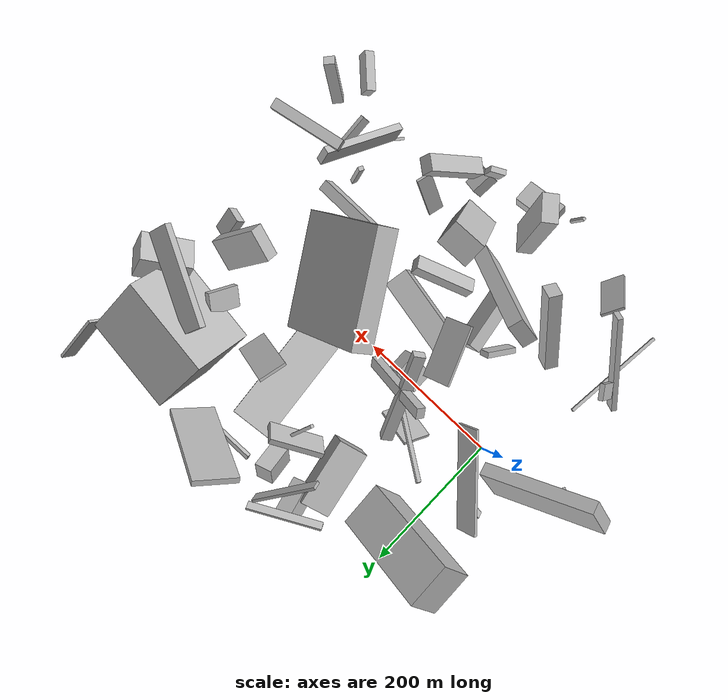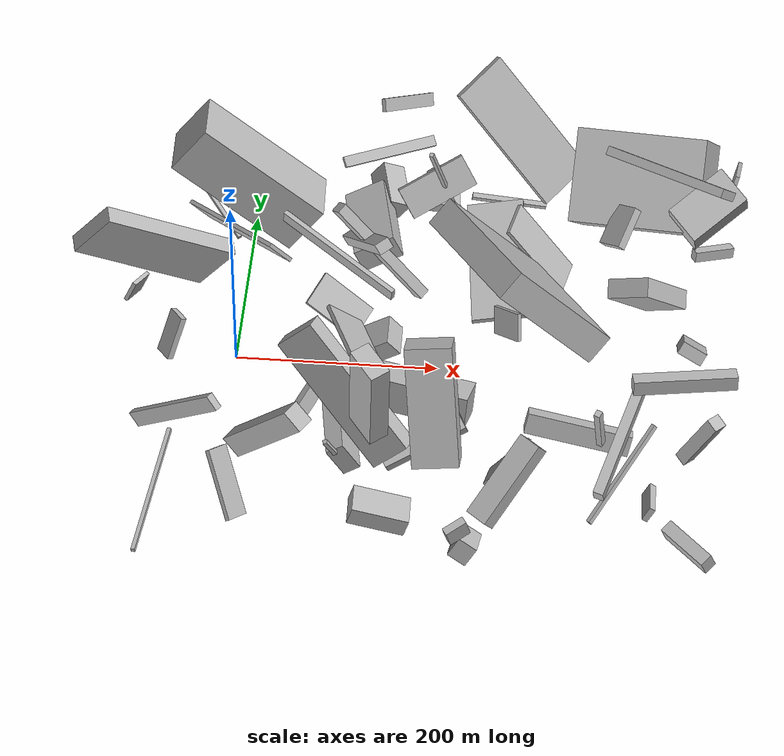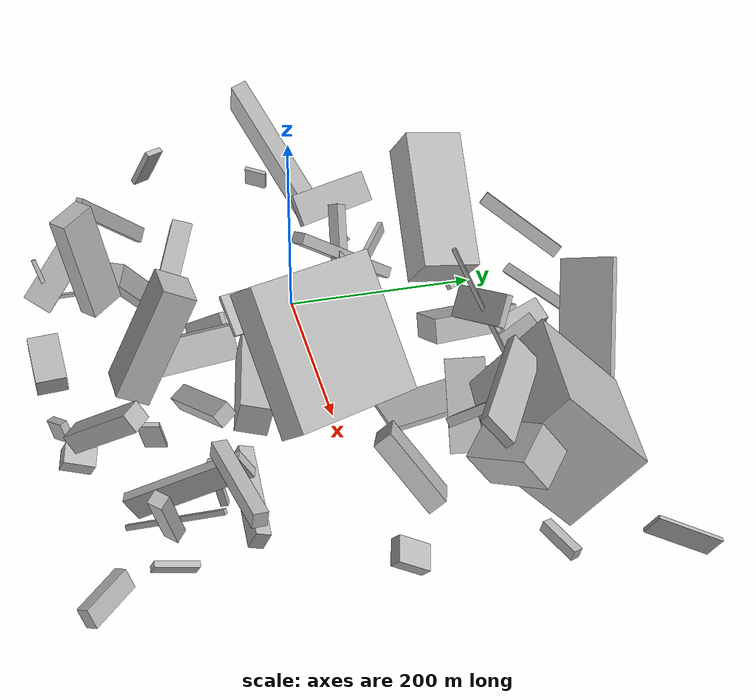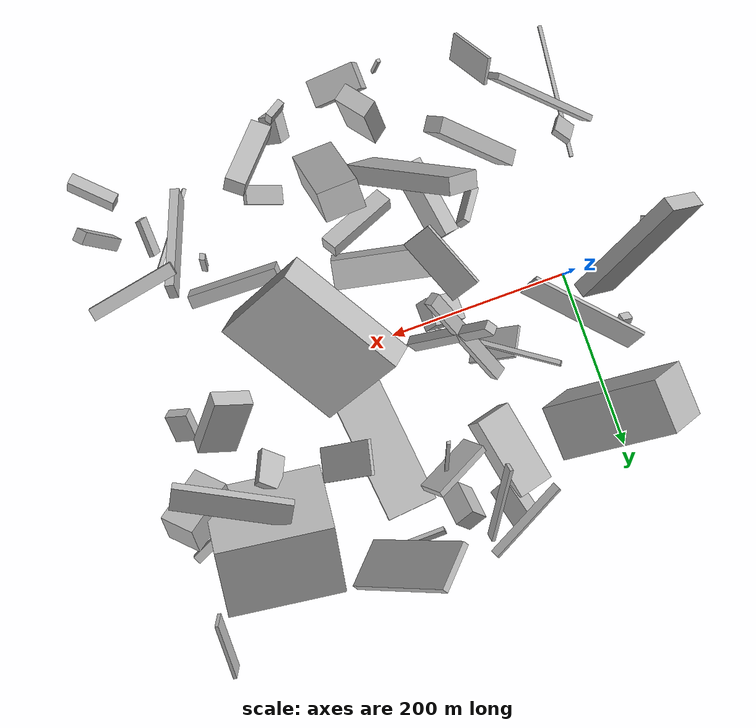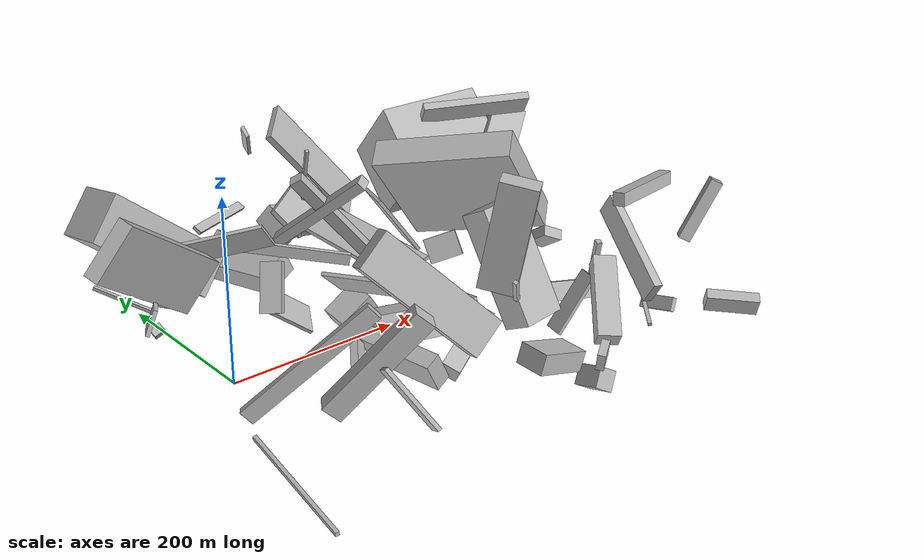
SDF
<sdf version="1.6">
 <world name="default">
  <scene>
   <sky><clouds><speed>12</speed></clouds></sky>
   <ambient>0.4 0.4 0.4 1</ambient>
   <background>0.7 0.7 0.7 1</background>
   <shadows>1</shadows>
  </scene>
  <gravity>0 0 -9.8066</gravity>
  <magnetic_field>6e-06 2.3e-05 -4.2e-05</magnetic_field>
  <physics default="0" name="default_physics" type="ode">
   <ode>
    <solver>
     <type>quick</type>
     <iters>10</iters>
     <sor>1.0</sor>
     <use_dynamic_moi_rescaling>0</use_dynamic_moi_rescaling>
    </solver>
    <constraints>
     <cfm>0</cfm>
     <erp>0.2</erp>
     <contact_max_correcting_vel>100</contact_max_correcting_vel>
     <contact_surface_layer>0.001</contact_surface_layer>
    </constraints>
   </ode>
   <max_step_size>0.004</max_step_size>
   <real_time_factor>1</real_time_factor>
   <real_time_update_rate>250</real_time_update_rate>
  </physics>
  <light name="sun" type="directional">
   <pose>0 0 10 0 0 0</pose>
   <diffuse>0.8 0.8 0.8 1</diffuse>
   <specular>0.2 0.2 0.2 1</specular>
   <attenuation>
    <range>1000</range>
    <constant>0.9</constant>
    <linear>0.01</linear>
    <quadratic>0.001</quadratic>
   </attenuation>
   <direction>-0.5 0.1 -0.9</direction>
  </light>
  <model name="building_1">
   <static>0</static>
   <pose>123.74335335547285 -56.24664806190561 90.116198682808 0.14238553877001117 -0.7318993161235338 -2.857929717678552</pose>
   <link name="link">
    <gravity>0</gravity>
    <pose>0 0 2.0 0 0 0</pose>
    <collision name="collision"><geometry><box><size>43 81 4</size></box></geometry></collision>
    <visual name="visual">
     <cast_shadows>0</cast_shadows>
     <geometry><box><size>43 81 4</size></box></geometry>
     <material>
      <script>
       <uri>model://HANNAS_wall/materials/scripts</uri>
       <uri>model://HANNAS_wall/materials/textures</uri>
       <name>vrc/HANNAS_wall</name>
      </script>
     </material>
    </visual>
   </link>
  </model>
  <model name="building_2">
   <static>0</static>
   <pose>259.74982524314913 36.923315966485525 37.78510158858887 -1.4605844071993501 -0.1436564406270151 0.08734681460795106</pose>
   <link name="link">
    <gravity>0</gravity>
    <pose>0 0 75.0 0 0 0</pose>
    <collision name="collision"><geometry><box><size>57 5 150</size></box></geometry></collision>
    <visual name="visual">
     <cast_shadows>0</cast_shadows>
     <geometry><box><size>57 5 150</size></box></geometry>
     <material>
      <script>
       <uri>model://HANNAS_wall/materials/scripts</uri>
       <uri>model://HANNAS_wall/materials/textures</uri>
       <name>vrc/HANNAS_wall</name>
      </script>
     </material>
    </visual>
   </link>
  </model>
  <model name="building_3">
   <static>0</static>
   <pose>145.3525344953552 221.3766727356625 28.350001901200404 0.45486317061126996 -0.9570368602028965 -0.13378304750340705</pose>
   <link name="link">
    <gravity>0</gravity>
    <pose>0 0 12.5 0 0 0</pose>
    <collision name="collision"><geometry><box><size>24 48 25</size></box></geometry></collision>
    <visual name="visual">
     <cast_shadows>0</cast_shadows>
     <geometry><box><size>24 48 25</size></box></geometry>
     <material>
      <script>
       <uri>model://HANNAS_wall/materials/scripts</uri>
       <uri>model://HANNAS_wall/materials/textures</uri>
       <name>vrc/HANNAS_wall</name>
      </script>
     </material>
    </visual>
   </link>
  </model>
  <model name="building_4">
   <static>0</static>
   <pose>240.7470517730752 -269.6540010209525 54.19824974842009 0.1086940778530044 -0.30485789043415945 0.5550606528805041</pose>
   <link name="link">
    <gravity>0</gravity>
    <pose>0 0 10.0 0 0 0</pose>
    <collision name="collision"><geometry><box><size>22 8 20</size></box></geometry></collision>
    <visual name="visual">
     <cast_shadows>0</cast_shadows>
     <geometry><box><size>22 8 20</size></box></geometry>
     <material>
      <script>
       <uri>model://HANNAS_wall/materials/scripts</uri>
       <uri>model://HANNAS_wall/materials/textures</uri>
       <name>vrc/HANNAS_wall</name>
      </script>
     </material>
    </visual>
   </link>
  </model>
  <model name="building_5">
   <static>0</static>
   <pose>108.29719682200997 -127.93823091513902 38.27034203593833 0.016714758355375517 1.073087494202924 0.16890316734252764</pose>
   <link name="link">
    <gravity>0</gravity>
    <pose>0 0 9.0 0 0 0</pose>
    <collision name="collision"><geometry><box><size>35 88 18</size></box></geometry></collision>
    <visual name="visual">
     <cast_shadows>0</cast_shadows>
     <geometry><box><size>35 88 18</size></box></geometry>
     <material>
      <script>
       <uri>model://HANNAS_wall/materials/scripts</uri>
       <uri>model://HANNAS_wall/materials/textures</uri>
       <name>vrc/HANNAS_wall</name>
      </script>
     </material>
    </visual>
   </link>
  </model>
  <model name="building_6">
   <static>0</static>
   <pose>433.646347328719 86.76203756718176 125.39207448574899 -1.114121876942822 0.4163938122923364 -0.7530156954402834</pose>
   <link name="link">
    <gravity>0</gravity>
    <pose>0 0 33.0 0 0 0</pose>
    <collision name="collision"><geometry><box><size>40 41 66</size></box></geometry></collision>
    <visual name="visual">
     <cast_shadows>0</cast_shadows>
     <geometry><box><size>40 41 66</size></box></geometry>
     <material>
      <script>
       <uri>model://HANNAS_wall/materials/scripts</uri>
       <uri>model://HANNAS_wall/materials/textures</uri>
       <name>vrc/HANNAS_wall</name>
      </script>
     </material>
    </visual>
   </link>
  </model>
  <model name="building_7">
   <static>0</static>
   <pose>401.2884645110185 199.86696154263456 77.24047619805447 0.7885647848949856 -0.05769050553876169 -0.1338964582395896</pose>
   <link name="link">
    <gravity>0</gravity>
    <pose>0 0 52.0 0 0 0</pose>
    <collision name="collision"><geometry><box><size>129 93 104</size></box></geometry></collision>
    <visual name="visual">
     <cast_shadows>0</cast_shadows>
     <geometry><box><size>129 93 104</size></box></geometry>
     <material>
      <script>
       <uri>model://HANNAS_wall/materials/scripts</uri>
       <uri>model://HANNAS_wall/materials/textures</uri>
       <name>vrc/HANNAS_wall</name>
      </script>
     </material>
    </visual>
   </link>
  </model>
  <model name="building_8">
   <static>0</static>
   <pose>152.13958935823766 -216.736445772496 140.5125747693636 0.18093582491385723 -0.08886203809144601 0.6492674722027028</pose>
   <link name="link">
    <gravity>0</gravity>
    <pose>0 0 54.5 0 0 0</pose>
    <collision name="collision"><geometry><box><size>20 36 109</size></box></geometry></collision>
    <visual name="visual">
     <cast_shadows>0</cast_shadows>
     <geometry><box><size>20 36 109</size></box></geometry>
     <material>
      <script>
       <uri>model://HANNAS_wall/materials/scripts</uri>
       <uri>model://HANNAS_wall/materials/textures</uri>
       <name>vrc/HANNAS_wall</name>
      </script>
     </material>
    </visual>
   </link>
  </model>
  <model name="building_9">
   <static>0</static>
   <pose>295.18817540945764 110.9042787282642 65.91169954935232 2.203803994833127 0.07629647262974666 -1.7997693987598509</pose>
   <link name="link">
    <gravity>0</gravity>
    <pose>0 0 2.0 0 0 0</pose>
    <collision name="collision"><geometry><box><size>39 91 4</size></box></geometry></collision>
    <visual name="visual">
     <cast_shadows>0</cast_shadows>
     <geometry><box><size>39 91 4</size></box></geometry>
     <material>
      <script>
       <uri>model://HANNAS_wall/materials/scripts</uri>
       <uri>model://HANNAS_wall/materials/textures</uri>
       <name>vrc/HANNAS_wall</name>
      </script>
     </material>
    </visual>
   </link>
  </model>
  <model name="building_10">
   <static>0</static>
   <pose>157.35843964056352 140.80154864615713 88.64840481960499 1.1603843916662249 0.5712188607745062 1.799602132724441</pose>
   <link name="link">
    <gravity>0</gravity>
    <pose>0 0 36.0 0 0 0</pose>
    <collision name="collision"><geometry><box><size>8 33 72</size></box></geometry></collision>
    <visual name="visual">
     <cast_shadows>0</cast_shadows>
     <geometry><box><size>8 33 72</size></box></geometry>
     <material>
      <script>
       <uri>model://HANNAS_wall/materials/scripts</uri>
       <uri>model://HANNAS_wall/materials/textures</uri>
       <name>vrc/HANNAS_wall</name>
      </script>
     </material>
    </visual>
   </link>
  </model>
  <model name="building_11">
   <static>0</static>
   <pose>279.1392019628646 -190.26148123420083 75.90543023914806 2.1612406105803434 -0.018599337153481936 1.3241074644466968</pose>
   <link name="link">
    <gravity>0</gravity>
    <pose>0 0 2.0 0 0 0</pose>
    <collision name="collision"><geometry><box><size>21 67 4</size></box></geometry></collision>
    <visual name="visual">
     <cast_shadows>0</cast_shadows>
     <geometry><box><size>21 67 4</size></box></geometry>
     <material>
      <script>
       <uri>model://HANNAS_wall/materials/scripts</uri>
       <uri>model://HANNAS_wall/materials/textures</uri>
       <name>vrc/HANNAS_wall</name>
      </script>
     </material>
    </visual>
   </link>
  </model>
  <model name="building_12">
   <static>0</static>
   <pose>183.15474945602898 15.703649832797186 87.86144784265011 -0.5783144656389352 -0.40814676209469297 0.8796921890699773</pose>
   <link name="link">
    <gravity>0</gravity>
    <pose>0 0 64.0 0 0 0</pose>
    <collision name="collision"><geometry><box><size>11 14 128</size></box></geometry></collision>
    <visual name="visual">
     <cast_shadows>0</cast_shadows>
     <geometry><box><size>11 14 128</size></box></geometry>
     <material>
      <script>
       <uri>model://HANNAS_wall/materials/scripts</uri>
       <uri>model://HANNAS_wall/materials/textures</uri>
       <name>vrc/HANNAS_wall</name>
      </script>
     </material>
    </visual>
   </link>
  </model>
  <model name="building_13">
   <static>0</static>
   <pose>-3.3813754856317715 189.88217393219918 95.81592569551108 1.3272162565689518 -0.8690493334747457 0.24290197307623052</pose>
   <link name="link">
    <gravity>0</gravity>
    <pose>0 0 31.0 0 0 0</pose>
    <collision name="collision"><geometry><box><size>55 150 62</size></box></geometry></collision>
    <visual name="visual">
     <cast_shadows>0</cast_shadows>
     <geometry><box><size>55 150 62</size></box></geometry>
     <material>
      <script>
       <uri>model://HANNAS_wall/materials/scripts</uri>
       <uri>model://HANNAS_wall/materials/textures</uri>
       <name>vrc/HANNAS_wall</name>
      </script>
     </material>
    </visual>
   </link>
  </model>
  <model name="building_14">
   <static>0</static>
   <pose>184.14721627654515 -59.36955670693196 38.797220792031 0.194739484414668 -1.3419493762796757 1.176780599482635</pose>
   <link name="link">
    <gravity>0</gravity>
    <pose>0 0 16.5 0 0 0</pose>
    <collision name="collision"><geometry><box><size>34 117 33</size></box></geometry></collision>
    <visual name="visual">
     <cast_shadows>0</cast_shadows>
     <geometry><box><size>34 117 33</size></box></geometry>
     <material>
      <script>
       <uri>model://HANNAS_wall/materials/scripts</uri>
       <uri>model://HANNAS_wall/materials/textures</uri>
       <name>vrc/HANNAS_wall</name>
      </script>
     </material>
    </visual>
   </link>
  </model>
  <model name="building_15">
   <static>0</static>
   <pose>-46.12538650730954 -149.81410995242265 152.01122513342955 -0.1441105155370551 0.449585419395785 0.5581015411777643</pose>
   <link name="link">
    <gravity>0</gravity>
    <pose>0 0 22.0 0 0 0</pose>
    <collision name="collision"><geometry><box><size>6 20 44</size></box></geometry></collision>
    <visual name="visual">
     <cast_shadows>0</cast_shadows>
     <geometry><box><size>6 20 44</size></box></geometry>
     <material>
      <script>
       <uri>model://HANNAS_wall/materials/scripts</uri>
       <uri>model://HANNAS_wall/materials/textures</uri>
       <name>vrc/HANNAS_wall</name>
      </script>
     </material>
    </visual>
   </link>
  </model>
  <model name="building_16">
   <static>0</static>
   <pose>248.31285917122273 218.61580723207652 97.26131772216327 1.1339551293798578 0.5509427623515697 2.129308347417714</pose>
   <link name="link">
    <gravity>0</gravity>
    <pose>0 0 29.0 0 0 0</pose>
    <collision name="collision"><geometry><box><size>8 150 58</size></box></geometry></collision>
    <visual name="visual">
     <cast_shadows>0</cast_shadows>
     <geometry><box><size>8 150 58</size></box></geometry>
     <material>
      <script>
       <uri>model://HANNAS_wall/materials/scripts</uri>
       <uri>model://HANNAS_wall/materials/textures</uri>
       <name>vrc/HANNAS_wall</name>
      </script>
     </material>
    </visual>
   </link>
  </model>
  <model name="building_17">
   <static>0</static>
   <pose>294.20296240356015 -109.07215516166126 48.27249375117434 1.7947117049915726 0.35463852028765 1.6149030752461226</pose>
   <link name="link">
    <gravity>0</gravity>
    <pose>0 0 51.5 0 0 0</pose>
    <collision name="collision"><geometry><box><size>15 21 103</size></box></geometry></collision>
    <visual name="visual">
     <cast_shadows>0</cast_shadows>
     <geometry><box><size>15 21 103</size></box></geometry>
     <material>
      <script>
       <uri>model://HANNAS_wall/materials/scripts</uri>
       <uri>model://HANNAS_wall/materials/textures</uri>
       <name>vrc/HANNAS_wall</name>
      </script>
     </material>
    </visual>
   </link>
  </model>
  <model name="building_18">
   <static>0</static>
   <pose>-58.23078290655988 -193.36435548346998 10.086351373051736 -1.6950017466391976 -0.08424361042544706 1.4571693512966941</pose>
   <link name="link">
    <gravity>0</gravity>
    <pose>0 0 2.0 0 0 0</pose>
    <collision name="collision"><geometry><box><size>150 4 4</size></box></geometry></collision>
    <visual name="visual">
     <cast_shadows>0</cast_shadows>
     <geometry><box><size>150 4 4</size></box></geometry>
     <material>
      <script>
       <uri>model://HANNAS_wall/materials/scripts</uri>
       <uri>model://HANNAS_wall/materials/textures</uri>
       <name>vrc/HANNAS_wall</name>
      </script>
     </material>
    </visual>
   </link>
  </model>
  <model name="building_19">
   <static>0</static>
   <pose>19.440685774261375 -251.72328882533992 88.54072569732739 -0.7527135560697148 0.7829681942489041 -1.0865947405323144</pose>
   <link name="link">
    <gravity>0</gravity>
    <pose>0 0 2.0 0 0 0</pose>
    <collision name="collision"><geometry><box><size>68 31 4</size></box></geometry></collision>
    <visual name="visual">
     <cast_shadows>0</cast_shadows>
     <geometry><box><size>68 31 4</size></box></geometry>
     <material>
      <script>
       <uri>model://HANNAS_wall/materials/scripts</uri>
       <uri>model://HANNAS_wall/materials/textures</uri>
       <name>vrc/HANNAS_wall</name>
      </script>
     </material>
    </visual>
   </link>
  </model>
  <model name="building_20">
   <static>0</static>
   <pose>394.9912742620975 -146.03557597300872 142.89816554164557 1.7999579091405493 -1.4474266558569193 1.5236582524027045</pose>
   <link name="link">
    <gravity>0</gravity>
    <pose>0 0 49.5 0 0 0</pose>
    <collision name="collision"><geometry><box><size>15 14 99</size></box></geometry></collision>
    <visual name="visual">
     <cast_shadows>0</cast_shadows>
     <geometry><box><size>15 14 99</size></box></geometry>
     <material>
      <script>
       <uri>model://HANNAS_wall/materials/scripts</uri>
       <uri>model://HANNAS_wall/materials/textures</uri>
       <name>vrc/HANNAS_wall</name>
      </script>
     </material>
    </visual>
   </link>
  </model>
  <model name="building_21">
   <static>0</static>
   <pose>323.09397096409856 -10.356022171231473 99.00028343065088 0.6751581440924765 -0.18454156594785065 -1.0249469719779853</pose>
   <link name="link">
    <gravity>0</gravity>
    <pose>0 0 70.0 0 0 0</pose>
    <collision name="collision"><geometry><box><size>150 31 140</size></box></geometry></collision>
    <visual name="visual">
     <cast_shadows>0</cast_shadows>
     <geometry><box><size>150 31 140</size></box></geometry>
     <material>
      <script>
       <uri>model://HANNAS_wall/materials/scripts</uri>
       <uri>model://HANNAS_wall/materials/textures</uri>
       <name>vrc/HANNAS_wall</name>
      </script>
     </material>
    </visual>
   </link>
  </model>
  <model name="building_22">
   <static>0</static>
   <pose>133.2032759546178 236.55292436683646 71.19927752356676 3.064737193460574 0.6392618617449551 -1.1271039723277279</pose>
   <link name="link">
    <gravity>0</gravity>
    <pose>0 0 2.0 0 0 0</pose>
    <collision name="collision"><geometry><box><size>11 100 4</size></box></geometry></collision>
    <visual name="visual">
     <cast_shadows>0</cast_shadows>
     <geometry><box><size>11 100 4</size></box></geometry>
     <material>
      <script>
       <uri>model://HANNAS_wall/materials/scripts</uri>
       <uri>model://HANNAS_wall/materials/textures</uri>
       <name>vrc/HANNAS_wall</name>
      </script>
     </material>
    </visual>
   </link>
  </model>
  <model name="building_23">
   <static>0</static>
   <pose>125.47794659606927 -5.699487166397583 29.37911354890797 -0.24191136380287584 -0.9372155570067888 -2.935947149208641</pose>
   <link name="link">
    <gravity>0</gravity>
    <pose>0 0 20.5 0 0 0</pose>
    <collision name="collision"><geometry><box><size>22 32 41</size></box></geometry></collision>
    <visual name="visual">
     <cast_shadows>0</cast_shadows>
     <geometry><box><size>22 32 41</size></box></geometry>
     <material>
      <script>
       <uri>model://HANNAS_wall/materials/scripts</uri>
       <uri>model://HANNAS_wall/materials/textures</uri>
       <name>vrc/HANNAS_wall</name>
      </script>
     </material>
    </visual>
   </link>
  </model>
  <model name="building_24">
   <static>0</static>
   <pose>103.56536600252257 157.84906303082255 28.280403501804756 -0.22238042381260145 1.1594574773454895 -0.014687825697491348</pose>
   <link name="link">
    <gravity>0</gravity>
    <pose>0 0 21.5 0 0 0</pose>
    <collision name="collision"><geometry><box><size>26 95 43</size></box></geometry></collision>
    <visual name="visual">
     <cast_shadows>0</cast_shadows>
     <geometry><box><size>26 95 43</size></box></geometry>
     <material>
      <script>
       <uri>model://HANNAS_wall/materials/scripts</uri>
       <uri>model://HANNAS_wall/materials/textures</uri>
       <name>vrc/HANNAS_wall</name>
      </script>
     </material>
    </visual>
   </link>
  </model>
  <model name="building_25">
   <static>0</static>
   <pose>194.76482502001687 -134.2408361391503 40.38161966895506 2.690573901069569 0.34445760473661 -2.7509479365913765</pose>
   <link name="link">
    <gravity>0</gravity>
    <pose>0 0 8.5 0 0 0</pose>
    <collision name="collision"><geometry><box><size>86 20 17</size></box></geometry></collision>
    <visual name="visual">
     <cast_shadows>0</cast_shadows>
     <geometry><box><size>86 20 17</size></box></geometry>
     <material>
      <script>
       <uri>model://HANNAS_wall/materials/scripts</uri>
       <uri>model://HANNAS_wall/materials/textures</uri>
       <name>vrc/HANNAS_wall</name>
      </script>
     </material>
    </visual>
   </link>
  </model>
  <model name="building_26">
   <static>0</static>
   <pose>201.20325667391984 204.32282191203856 52.45095424477741 -1.1676228256630605 -0.5643606373330053 1.6914476306212625</pose>
   <link name="link">
    <gravity>0</gravity>
    <pose>0 0 12.0 0 0 0</pose>
    <collision name="collision"><geometry><box><size>41 27 24</size></box></geometry></collision>
    <visual name="visual">
     <cast_shadows>0</cast_shadows>
     <geometry><box><size>41 27 24</size></box></geometry>
     <material>
      <script>
       <uri>model://HANNAS_wall/materials/scripts</uri>
       <uri>model://HANNAS_wall/materials/textures</uri>
       <name>vrc/HANNAS_wall</name>
      </script>
     </material>
    </visual>
   </link>
  </model>
  <model name="building_27">
   <static>0</static>
   <pose>367.4272778831625 -138.37270756051885 53.07648683755404 0.21125734513327682 0.02396403240791837 -0.4366526515165733</pose>
   <link name="link">
    <gravity>0</gravity>
    <pose>0 0 26.0 0 0 0</pose>
    <collision name="collision"><geometry><box><size>6 7 52</size></box></geometry></collision>
    <visual name="visual">
     <cast_shadows>0</cast_shadows>
     <geometry><box><size>6 7 52</size></box></geometry>
     <material>
      <script>
       <uri>model://HANNAS_wall/materials/scripts</uri>
       <uri>model://HANNAS_wall/materials/textures</uri>
       <name>vrc/HANNAS_wall</name>
      </script>
     </material>
    </visual>
   </link>
  </model>
  <model name="building_28">
   <static>0</static>
   <pose>416.7388284523338 -213.24447148109743 37.11325571906466 -2.012737897603588 -1.0086510463047764 0.4075276371102881</pose>
   <link name="link">
    <gravity>0</gravity>
    <pose>0 0 21.0 0 0 0</pose>
    <collision name="collision"><geometry><box><size>15 6 42</size></box></geometry></collision>
    <visual name="visual">
     <cast_shadows>0</cast_shadows>
     <geometry><box><size>15 6 42</size></box></geometry>
     <material>
      <script>
       <uri>model://HANNAS_wall/materials/scripts</uri>
       <uri>model://HANNAS_wall/materials/textures</uri>
       <name>vrc/HANNAS_wall</name>
      </script>
     </material>
    </visual>
   </link>
  </model>
  <model name="building_29">
   <static>0</static>
   <pose>291.6115506264654 -240.09925770257732 92.56920927882922 -1.5026928354563762 -0.6318566186039034 0.8570617595387833</pose>
   <link name="link">
    <gravity>0</gravity>
    <pose>0 0 11.5 0 0 0</pose>
    <collision name="collision"><geometry><box><size>88 20 23</size></box></geometry></collision>
    <visual name="visual">
     <cast_shadows>0</cast_shadows>
     <geometry><box><size>88 20 23</size></box></geometry>
     <material>
      <script>
       <uri>model://HANNAS_wall/materials/scripts</uri>
       <uri>model://HANNAS_wall/materials/textures</uri>
       <name>vrc/HANNAS_wall</name>
      </script>
     </material>
    </visual>
   </link>
  </model>
  <model name="building_30">
   <static>0</static>
   <pose>55.28682730851624 -161.81871720467254 78.18237621726199 1.6910444238031908 0.7187619191255585 -0.4987607074635571</pose>
   <link name="link">
    <gravity>0</gravity>
    <pose>0 0 9.0 0 0 0</pose>
    <collision name="collision"><geometry><box><size>23 130 18</size></box></geometry></collision>
    <visual name="visual">
     <cast_shadows>0</cast_shadows>
     <geometry><box><size>23 130 18</size></box></geometry>
     <material>
      <script>
       <uri>model://HANNAS_wall/materials/scripts</uri>
       <uri>model://HANNAS_wall/materials/textures</uri>
       <name>vrc/HANNAS_wall</name>
      </script>
     </material>
    </visual>
   </link>
  </model>
  <model name="building_31">
   <static>0</static>
   <pose>214.9869558381604 -203.08754764814293 81.63438283057292 -0.10247264517158346 0.46855167152222016 1.5608819611858014</pose>
   <link name="link">
    <gravity>0</gravity>
    <pose>0 0 59.0 0 0 0</pose>
    <collision name="collision"><geometry><box><size>34 45 118</size></box></geometry></collision>
    <visual name="visual">
     <cast_shadows>0</cast_shadows>
     <geometry><box><size>34 45 118</size></box></geometry>
     <material>
      <script>
       <uri>model://HANNAS_wall/materials/scripts</uri>
       <uri>model://HANNAS_wall/materials/textures</uri>
       <name>vrc/HANNAS_wall</name>
      </script>
     </material>
    </visual>
   </link>
  </model>
  <model name="building_32">
   <static>0</static>
   <pose>175.41840842255516 236.50200001449434 145.17840548187036 -0.6218964864913139 -0.8762317400094067 1.7559150873116443</pose>
   <link name="link">
    <gravity>0</gravity>
    <pose>0 0 46.0 0 0 0</pose>
    <collision name="collision"><geometry><box><size>13 4 92</size></box></geometry></collision>
    <visual name="visual">
     <cast_shadows>0</cast_shadows>
     <geometry><box><size>13 4 92</size></box></geometry>
     <material>
      <script>
       <uri>model://HANNAS_wall/materials/scripts</uri>
       <uri>model://HANNAS_wall/materials/textures</uri>
       <name>vrc/HANNAS_wall</name>
      </script>
     </material>
    </visual>
   </link>
  </model>
  <model name="building_33">
   <static>0</static>
   <pose>368.5722761059858 -222.57378786036784 68.91783625412084 1.0500943611195546 -0.13552508300614574 2.8595130943442983</pose>
   <link name="link">
    <gravity>0</gravity>
    <pose>0 0 61.0 0 0 0</pose>
    <collision name="collision"><geometry><box><size>10 26 122</size></box></geometry></collision>
    <visual name="visual">
     <cast_shadows>0</cast_shadows>
     <geometry><box><size>10 26 122</size></box></geometry>
     <material>
      <script>
       <uri>model://HANNAS_wall/materials/scripts</uri>
       <uri>model://HANNAS_wall/materials/textures</uri>
       <name>vrc/HANNAS_wall</name>
      </script>
     </material>
    </visual>
   </link>
  </model>
  <model name="building_34">
   <static>0</static>
   <pose>-19.30360932928548 24.696571791443965 107.20978221630736 -0.4459662302224657 0.8921646324247061 3.031990283759307</pose>
   <link name="link">
    <gravity>0</gravity>
    <pose>0 0 75.0 0 0 0</pose>
    <collision name="collision"><geometry><box><size>59 17 150</size></box></geometry></collision>
    <visual name="visual">
     <cast_shadows>0</cast_shadows>
     <geometry><box><size>59 17 150</size></box></geometry>
     <material>
      <script>
       <uri>model://HANNAS_wall/materials/scripts</uri>
       <uri>model://HANNAS_wall/materials/textures</uri>
       <name>vrc/HANNAS_wall</name>
      </script>
     </material>
    </visual>
   </link>
  </model>
  <model name="building_35">
   <static>0</static>
   <pose>425.5471015037871 119.88406683528171 166.50019659090628 -0.7875548335480247 0.05109722121315642 2.654893264765428</pose>
   <link name="link">
    <gravity>0</gravity>
    <pose>0 0 17.0 0 0 0</pose>
    <collision name="collision"><geometry><box><size>129 9 34</size></box></geometry></collision>
    <visual name="visual">
     <cast_shadows>0</cast_shadows>
     <geometry><box><size>129 9 34</size></box></geometry>
     <material>
      <script>
       <uri>model://HANNAS_wall/materials/scripts</uri>
       <uri>model://HANNAS_wall/materials/textures</uri>
       <name>vrc/HANNAS_wall</name>
      </script>
     </material>
    </visual>
   </link>
  </model>
  <model name="building_36">
   <static>0</static>
   <pose>447.46115224394833 140.37271974012356 40.60822294985663 2.400739097771156 -1.3420533392935678 1.185056883916247</pose>
   <link name="link">
    <gravity>0</gravity>
    <pose>0 0 21.0 0 0 0</pose>
    <collision name="collision"><geometry><box><size>11 10 42</size></box></geometry></collision>
    <visual name="visual">
     <cast_shadows>0</cast_shadows>
     <geometry><box><size>11 10 42</size></box></geometry>
     <material>
      <script>
       <uri>model://HANNAS_wall/materials/scripts</uri>
       <uri>model://HANNAS_wall/materials/textures</uri>
       <name>vrc/HANNAS_wall</name>
      </script>
     </material>
    </visual>
   </link>
  </model>
  <model name="building_37">
   <static>0</static>
   <pose>122.20802423168242 -273.36754328692894 165.93041058251993 1.0201746020945066 -1.0960713752773699 -2.4728774595009395</pose>
   <link name="link">
    <gravity>0</gravity>
    <pose>0 0 2.0 0 0 0</pose>
    <collision name="collision"><geometry><box><size>24 4 4</size></box></geometry></collision>
    <visual name="visual">
     <cast_shadows>0</cast_shadows>
     <geometry><box><size>24 4 4</size></box></geometry>
     <material>
      <script>
       <uri>model://HANNAS_wall/materials/scripts</uri>
       <uri>model://HANNAS_wall/materials/textures</uri>
       <name>vrc/HANNAS_wall</name>
      </script>
     </material>
    </visual>
   </link>
  </model>
  <model name="building_38">
   <static>0</static>
   <pose>-87.1246288563156 -19.17189071426275 121.19058780973154 -2.9963818027074893 -0.37161365146246217 2.5918628796997827</pose>
   <link name="link">
    <gravity>0</gravity>
    <pose>0 0 13.0 0 0 0</pose>
    <collision name="collision"><geometry><box><size>4 23 26</size></box></geometry></collision>
    <visual name="visual">
     <cast_shadows>0</cast_shadows>
     <geometry><box><size>4 23 26</size></box></geometry>
     <material>
      <script>
       <uri>model://HANNAS_wall/materials/scripts</uri>
       <uri>model://HANNAS_wall/materials/textures</uri>
       <name>vrc/HANNAS_wall</name>
      </script>
     </material>
    </visual>
   </link>
  </model>
  <model name="building_39">
   <static>0</static>
   <pose>459.70881017193506 -254.22006766691752 48.2768672607851 2.987073681101611 -1.1572490742158832 -2.20268920954833</pose>
   <link name="link">
    <gravity>0</gravity>
    <pose>0 0 6.5 0 0 0</pose>
    <collision name="collision"><geometry><box><size>20 55 13</size></box></geometry></collision>
    <visual name="visual">
     <cast_shadows>0</cast_shadows>
     <geometry><box><size>20 55 13</size></box></geometry>
     <material>
      <script>
       <uri>model://HANNAS_wall/materials/scripts</uri>
       <uri>model://HANNAS_wall/materials/textures</uri>
       <name>vrc/HANNAS_wall</name>
      </script>
     </material>
    </visual>
   </link>
  </model>
  <model name="building_40">
   <static>0</static>
   <pose>97.94652536228303 48.14425852896861 31.63616854113176 0.47445133708726717 0.6516490670449326 -0.20116227868112815</pose>
   <link name="link">
    <gravity>0</gravity>
    <pose>0 0 2.0 0 0 0</pose>
    <collision name="collision"><geometry><box><size>61 37 4</size></box></geometry></collision>
    <visual name="visual">
     <cast_shadows>0</cast_shadows>
     <geometry><box><size>61 37 4</size></box></geometry>
     <material>
      <script>
       <uri>model://HANNAS_wall/materials/scripts</uri>
       <uri>model://HANNAS_wall/materials/textures</uri>
       <name>vrc/HANNAS_wall</name>
      </script>
     </material>
    </visual>
   </link>
  </model>
  <model name="building_41">
   <static>0</static>
   <pose>465.7642883758558 -196.86404466670544 131.15668674561056 -1.2995631972834927 1.118133193097853 2.639457254918235</pose>
   <link name="link">
    <gravity>0</gravity>
    <pose>0 0 7.0 0 0 0</pose>
    <collision name="collision"><geometry><box><size>71 13 14</size></box></geometry></collision>
    <visual name="visual">
     <cast_shadows>0</cast_shadows>
     <geometry><box><size>71 13 14</size></box></geometry>
     <material>
      <script>
       <uri>model://HANNAS_wall/materials/scripts</uri>
       <uri>model://HANNAS_wall/materials/textures</uri>
       <name>vrc/HANNAS_wall</name>
      </script>
     </material>
    </visual>
   </link>
  </model>
  <model name="building_42">
   <static>0</static>
   <pose>192.7765652730299 -273.335272131178 80.58556492503396 1.2884665137077638 0.044213496146056616 -1.545746167178672</pose>
   <link name="link">
    <gravity>0</gravity>
    <pose>0 0 27.5 0 0 0</pose>
    <collision name="collision"><geometry><box><size>30 20 55</size></box></geometry></collision>
    <visual name="visual">
     <cast_shadows>0</cast_shadows>
     <geometry><box><size>30 20 55</size></box></geometry>
     <material>
      <script>
       <uri>model://HANNAS_wall/materials/scripts</uri>
       <uri>model://HANNAS_wall/materials/textures</uri>
       <name>vrc/HANNAS_wall</name>
      </script>
     </material>
    </visual>
   </link>
  </model>
  <model name="building_43">
   <static>0</static>
   <pose>-32.313334486041384 -182.7361746261289 114.11360571029094 1.647041892847924 -0.736982441069516 -0.6768702136280093</pose>
   <link name="link">
    <gravity>0</gravity>
    <pose>0 0 3.5 0 0 0</pose>
    <collision name="collision"><geometry><box><size>150 16 7</size></box></geometry></collision>
    <visual name="visual">
     <cast_shadows>0</cast_shadows>
     <geometry><box><size>150 16 7</size></box></geometry>
     <material>
      <script>
       <uri>model://HANNAS_wall/materials/scripts</uri>
       <uri>model://HANNAS_wall/materials/textures</uri>
       <name>vrc/HANNAS_wall</name>
      </script>
     </material>
    </visual>
   </link>
  </model>
  <model name="building_44">
   <static>0</static>
   <pose>-45.901215721082295 66.04400571296155 49.559973902333255 -2.449202810232564 -0.4431494466096905 -0.11957641727895536</pose>
   <link name="link">
    <gravity>0</gravity>
    <pose>0 0 4.5 0 0 0</pose>
    <collision name="collision"><geometry><box><size>12 10 9</size></box></geometry></collision>
    <visual name="visual">
     <cast_shadows>0</cast_shadows>
     <geometry><box><size>12 10 9</size></box></geometry>
     <material>
      <script>
       <uri>model://HANNAS_wall/materials/scripts</uri>
       <uri>model://HANNAS_wall/materials/textures</uri>
       <name>vrc/HANNAS_wall</name>
      </script>
     </material>
    </visual>
   </link>
  </model>
  <model name="building_45">
   <static>0</static>
   <pose>196.7711495893508 152.52518983335042 107.62733191495496 1.6036113627176454 0.43234067784584645 -1.8684675670001385</pose>
   <link name="link">
    <gravity>0</gravity>
    <pose>0 0 2.0 0 0 0</pose>
    <collision name="collision"><geometry><box><size>4 140 4</size></box></geometry></collision>
    <visual name="visual">
     <cast_shadows>0</cast_shadows>
     <geometry><box><size>4 140 4</size></box></geometry>
     <material>
      <script>
       <uri>model://HANNAS_wall/materials/scripts</uri>
       <uri>model://HANNAS_wall/materials/textures</uri>
       <name>vrc/HANNAS_wall</name>
      </script>
     </material>
    </visual>
   </link>
  </model>
  <model name="building_46">
   <static>0</static>
   <pose>360.9729911661889 -228.0555176249166 37.79327090946951 -0.48788014960889925 1.0310970749174873 0.41509003552849877</pose>
   <link name="link">
    <gravity>0</gravity>
    <pose>0 0 56.0 0 0 0</pose>
    <collision name="collision"><geometry><box><size>5 4 112</size></box></geometry></collision>
    <visual name="visual">
     <cast_shadows>0</cast_shadows>
     <geometry><box><size>5 4 112</size></box></geometry>
     <material>
      <script>
       <uri>model://HANNAS_wall/materials/scripts</uri>
       <uri>model://HANNAS_wall/materials/textures</uri>
       <name>vrc/HANNAS_wall</name>
      </script>
     </material>
    </visual>
   </link>
  </model>
  <model name="building_47">
   <static>0</static>
   <pose>1.7739567080133058 44.223924155776835 129.71495654264737 0.4624291871116505 -0.9119163222678485 -2.7551181201398496</pose>
   <link name="link">
    <gravity>0</gravity>
    <pose>0 0 2.0 0 0 0</pose>
    <collision name="collision"><geometry><box><size>33 136 4</size></box></geometry></collision>
    <visual name="visual">
     <cast_shadows>0</cast_shadows>
     <geometry><box><size>33 136 4</size></box></geometry>
     <material>
      <script>
       <uri>model://HANNAS_wall/materials/scripts</uri>
       <uri>model://HANNAS_wall/materials/textures</uri>
       <name>vrc/HANNAS_wall</name>
      </script>
     </material>
    </visual>
   </link>
  </model>
  <model name="building_48">
   <static>0</static>
   <pose>123.57060647669803 23.03618107999157 141.53136659728474 -1.2208378274823595 -0.6635765532799969 -1.1704926366981716</pose>
   <link name="link">
    <gravity>0</gravity>
    <pose>0 0 7.5 0 0 0</pose>
    <collision name="collision"><geometry><box><size>135 11 15</size></box></geometry></collision>
    <visual name="visual">
     <cast_shadows>0</cast_shadows>
     <geometry><box><size>135 11 15</size></box></geometry>
     <material>
      <script>
       <uri>model://HANNAS_wall/materials/scripts</uri>
       <uri>model://HANNAS_wall/materials/textures</uri>
       <name>vrc/HANNAS_wall</name>
      </script>
     </material>
    </visual>
   </link>
  </model>
  <model name="building_49">
   <static>0</static>
   <pose>240.2437987799207 -261.2546451632098 22.16267718624473 -0.3584510896060747 0.4908072985176445 -0.2627343216253497</pose>
   <link name="link">
    <gravity>0</gravity>
    <pose>0 0 10.5 0 0 0</pose>
    <collision name="collision"><geometry><box><size>20 31 21</size></box></geometry></collision>
    <visual name="visual">
     <cast_shadows>0</cast_shadows>
     <geometry><box><size>20 31 21</size></box></geometry>
     <material>
      <script>
       <uri>model://HANNAS_wall/materials/scripts</uri>
       <uri>model://HANNAS_wall/materials/textures</uri>
       <name>vrc/HANNAS_wall</name>
      </script>
     </material>
    </visual>
   </link>
  </model>
  <model name="building_50">
   <static>0</static>
   <pose>-11.581102696156094 141.04434979331143 29.21682512703186 0.23751040674058627 -1.2310488150700585 -1.1452851840234193</pose>
   <link name="link">
    <gravity>0</gravity>
    <pose>0 0 34.5 0 0 0</pose>
    <collision name="collision"><geometry><box><size>4 4 69</size></box></geometry></collision>
    <visual name="visual">
     <cast_shadows>0</cast_shadows>
     <geometry><box><size>4 4 69</size></box></geometry>
     <material>
      <script>
       <uri>model://HANNAS_wall/materials/scripts</uri>
       <uri>model://HANNAS_wall/materials/textures</uri>
       <name>vrc/HANNAS_wall</name>
      </script>
     </material>
    </visual>
   </link>
  </model>
  <model name="building_51">
   <static>0</static>
   <pose>15.438393592493252 175.2295513375678 21.751522342749414 -2.4608267487097018 -0.007534904723601065 -1.0012925956131085</pose>
   <link name="link">
    <gravity>0</gravity>
    <pose>0 0 7.0 0 0 0</pose>
    <collision name="collision"><geometry><box><size>21 6 14</size></box></geometry></collision>
    <visual name="visual">
     <cast_shadows>0</cast_shadows>
     <geometry><box><size>21 6 14</size></box></geometry>
     <material>
      <script>
       <uri>model://HANNAS_wall/materials/scripts</uri>
       <uri>model://HANNAS_wall/materials/textures</uri>
       <name>vrc/HANNAS_wall</name>
      </script>
     </material>
    </visual>
   </link>
  </model>
  <model name="building_52">
   <static>0</static>
   <pose>127.43732566284996 -143.73634806737064 115.25767766887384 1.201769594440894 -0.7563283555111349 -0.015484424304883355</pose>
   <link name="link">
    <gravity>0</gravity>
    <pose>0 0 10.0 0 0 0</pose>
    <collision name="collision"><geometry><box><size>43 150 20</size></box></geometry></collision>
    <visual name="visual">
     <cast_shadows>0</cast_shadows>
     <geometry><box><size>43 150 20</size></box></geometry>
     <material>
      <script>
       <uri>model://HANNAS_wall/materials/scripts</uri>
       <uri>model://HANNAS_wall/materials/textures</uri>
       <name>vrc/HANNAS_wall</name>
      </script>
     </material>
    </visual>
   </link>
  </model>
  <model name="building_53">
   <static>0</static>
   <pose>422.26970662220896 46.48020439256918 66.87367714665217 0.7091329589775461 -0.39958435667027636 -0.30926389663198506</pose>
   <link name="link">
    <gravity>0</gravity>
    <pose>0 0 39.5 0 0 0</pose>
    <collision name="collision"><geometry><box><size>44 19 79</size></box></geometry></collision>
    <visual name="visual">
     <cast_shadows>0</cast_shadows>
     <geometry><box><size>44 19 79</size></box></geometry>
     <material>
      <script>
       <uri>model://HANNAS_wall/materials/scripts</uri>
       <uri>model://HANNAS_wall/materials/textures</uri>
       <name>vrc/HANNAS_wall</name>
      </script>
     </material>
    </visual>
   </link>
  </model>
  <model name="building_54">
   <static>0</static>
   <pose>64.2022900426999 -122.21268069712342 29.28294904914924 -0.9552193755375099 -0.3752182187916202 -0.8717820404631735</pose>
   <link name="link">
    <gravity>0</gravity>
    <pose>0 0 24.0 0 0 0</pose>
    <collision name="collision"><geometry><box><size>8 16 48</size></box></geometry></collision>
    <visual name="visual">
     <cast_shadows>0</cast_shadows>
     <geometry><box><size>8 16 48</size></box></geometry>
     <material>
      <script>
       <uri>model://HANNAS_wall/materials/scripts</uri>
       <uri>model://HANNAS_wall/materials/textures</uri>
       <name>vrc/HANNAS_wall</name>
      </script>
     </material>
    </visual>
   </link>
  </model>
  <model name="building_55">
   <static>0</static>
   <pose>446.9660946851893 10.86940581854497 27.5970389802322 0.5122657114945773 0.5744224790294127 1.6130039263853193</pose>
   <link name="link">
    <gravity>0</gravity>
    <pose>0 0 6.5 0 0 0</pose>
    <collision name="collision"><geometry><box><size>35 26 13</size></box></geometry></collision>
    <visual name="visual">
     <cast_shadows>0</cast_shadows>
     <geometry><box><size>35 26 13</size></box></geometry>
     <material>
      <script>
       <uri>model://HANNAS_wall/materials/scripts</uri>
       <uri>model://HANNAS_wall/materials/textures</uri>
       <name>vrc/HANNAS_wall</name>
      </script>
     </material>
    </visual>
   </link>
  </model>
  <model name="building_56">
   <static>0</static>
   <pose>256.0108924010199 223.65054828087045 21.258406264562208 0.14578903655299316 -0.5414976008966803 1.519270015427915</pose>
   <link name="link">
    <gravity>0</gravity>
    <pose>0 0 5.0 0 0 0</pose>
    <collision name="collision"><geometry><box><size>5 76 10</size></box></geometry></collision>
    <visual name="visual">
     <cast_shadows>0</cast_shadows>
     <geometry><box><size>5 76 10</size></box></geometry>
     <material>
      <script>
       <uri>model://HANNAS_wall/materials/scripts</uri>
       <uri>model://HANNAS_wall/materials/textures</uri>
       <name>vrc/HANNAS_wall</name>
      </script>
     </material>
    </visual>
   </link>
  </model>
  <model name="building_57">
   <static>0</static>
   <pose>488.3457874357473 258.02263286801417 36.67707471998 1.184988736737935 0.9880566076767947 -2.075910407001132</pose>
   <link name="link">
    <gravity>0</gravity>
    <pose>0 0 2.0 0 0 0</pose>
    <collision name="collision"><geometry><box><size>23 74 4</size></box></geometry></collision>
    <visual name="visual">
     <cast_shadows>0</cast_shadows>
     <geometry><box><size>23 74 4</size></box></geometry>
     <material>
      <script>
       <uri>model://HANNAS_wall/materials/scripts</uri>
       <uri>model://HANNAS_wall/materials/textures</uri>
       <name>vrc/HANNAS_wall</name>
      </script>
     </material>
    </visual>
   </link>
  </model>
  <model name="building_58">
   <static>0</static>
   <pose>41.80435335458705 89.22945849031072 112.93991391909135 -1.750361813692812 0.11635301668895644 -2.1942797514746624</pose>
   <link name="link">
    <gravity>0</gravity>
    <pose>0 0 70.0 0 0 0</pose>
    <collision name="collision"><geometry><box><size>5 13 140</size></box></geometry></collision>
    <visual name="visual">
     <cast_shadows>0</cast_shadows>
     <geometry><box><size>5 13 140</size></box></geometry>
     <material>
      <script>
       <uri>model://HANNAS_wall/materials/scripts</uri>
       <uri>model://HANNAS_wall/materials/textures</uri>
       <name>vrc/HANNAS_wall</name>
      </script>
     </material>
    </visual>
   </link>
  </model>
  <model name="building_59">
   <static>0</static>
   <pose>268.41378573946184 -1.2678894516419392 88.97399182354036 2.74183423462392 0.2774113946297026 0.6793891622359148</pose>
   <link name="link">
    <gravity>0</gravity>
    <pose>0 0 14.0 0 0 0</pose>
    <collision name="collision"><geometry><box><size>4 37 28</size></box></geometry></collision>
    <visual name="visual">
     <cast_shadows>0</cast_shadows>
     <geometry><box><size>4 37 28</size></box></geometry>
     <material>
      <script>
       <uri>model://HANNAS_wall/materials/scripts</uri>
       <uri>model://HANNAS_wall/materials/textures</uri>
       <name>vrc/HANNAS_wall</name>
      </script>
     </material>
    </visual>
   </link>
  </model>
  <model name="building_60">
   <static>0</static>
   <pose>365.8044785201713 75.4040706795208 109.083283116838 0.9182799550612795 0.42593681162757 2.41046383810426</pose>
   <link name="link">
    <gravity>0</gravity>
    <pose>0 0 21.0 0 0 0</pose>
    <collision name="collision"><geometry><box><size>28 9 42</size></box></geometry></collision>
    <visual name="visual">
     <cast_shadows>0</cast_shadows>
     <geometry><box><size>28 9 42</size></box></geometry>
     <material>
      <script>
       <uri>model://HANNAS_wall/materials/scripts</uri>
       <uri>model://HANNAS_wall/materials/textures</uri>
       <name>vrc/HANNAS_wall</name>
      </script>
     </material>
    </visual>
   </link>
  </model>
 </world>
</sdf>
